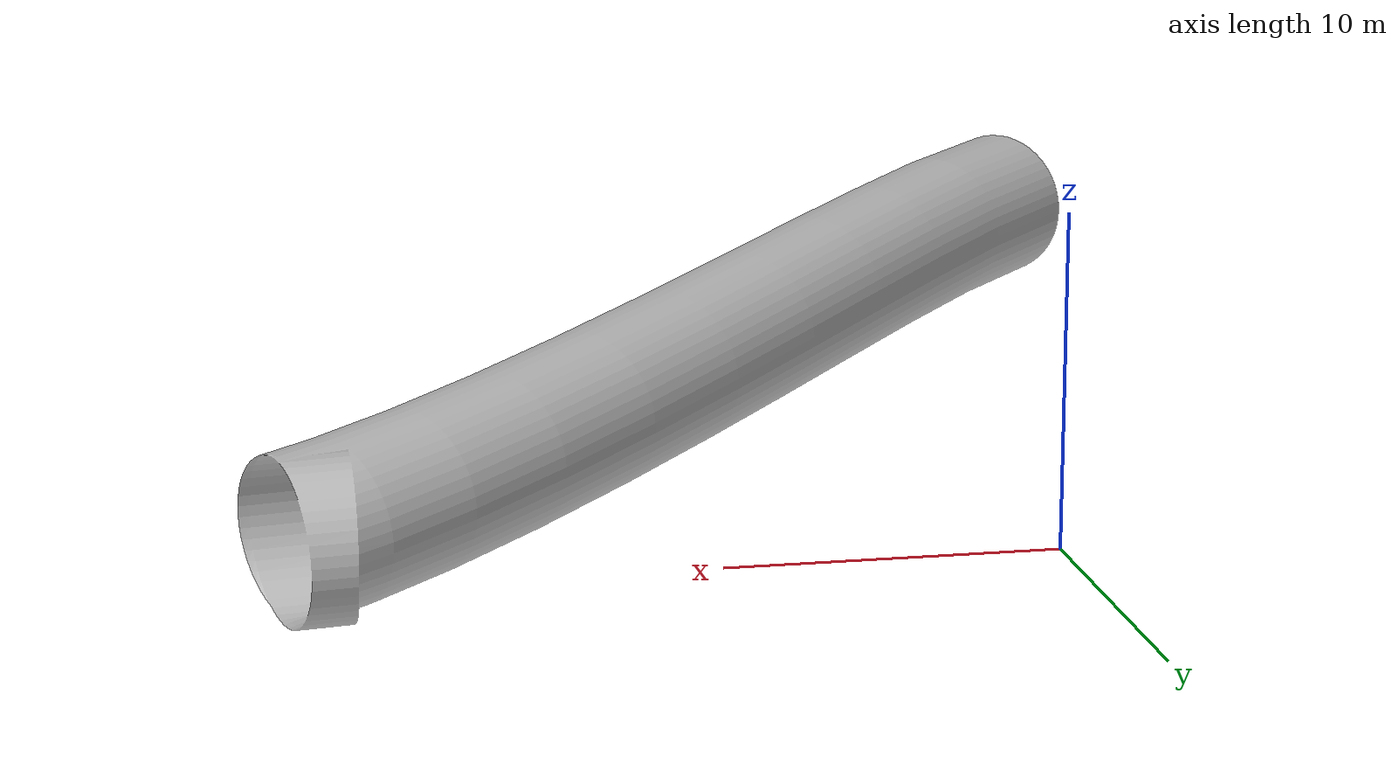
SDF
<?xml version="1.0" ?>
<sdf version="1.9">
  <model name="test_tunnel">
    <static>true</static>
    <link name="link">

      <!-- Visual part (what you see) -->
      <visual name="tunnel_visual">
        <geometry>
          <mesh>
            <uri>model://test_tunnel/meshes/TestShape.dae</uri>
            <scale>0.07 0.07 0.07</scale>
          </mesh>
        </geometry>
      </visual>

      <!-- Collision for the tunnel walls -->
      <collision name="tunnel_collision">
        <geometry>
          <mesh>
            <uri>model://test_tunnel/meshes/TestShape.dae</uri>
            <scale>0.07 0.07 0.07</scale>
          </mesh>
        </geometry>
      </collision>

      <!-- Extra collision box to act as a base/ground support -->
      <collision name="ground_support">
        <geometry>
          <box>
            <size>2 2 0.05</size> <!-- width, depth, height -->
          </box>
        </geometry>
        <pose>0 0 -0.5 0 0 0</pose> <!-- place it under the tunnel -->
      </collision>

    </link>
  </model>
</sdf>
